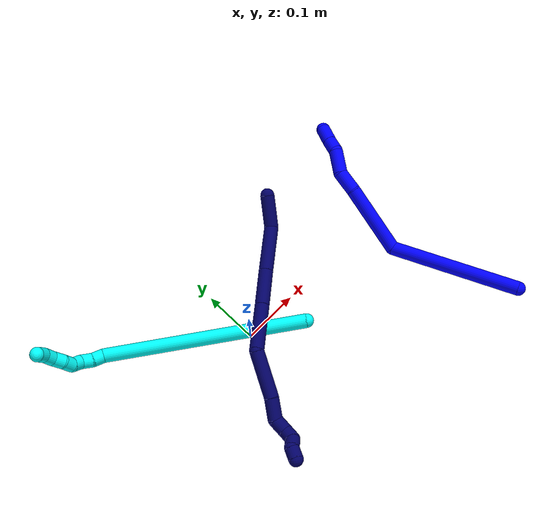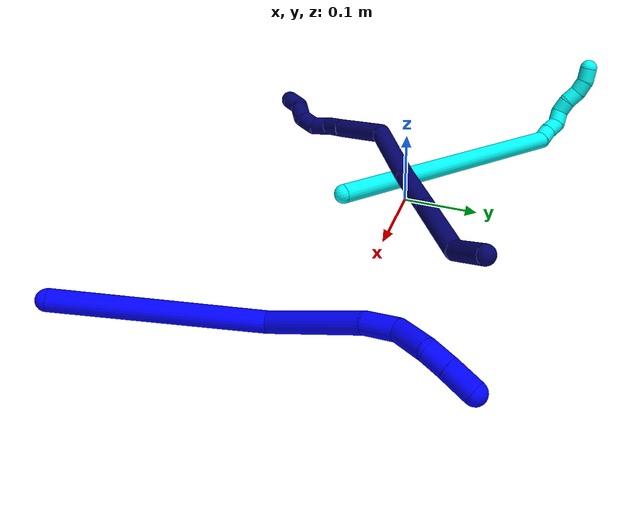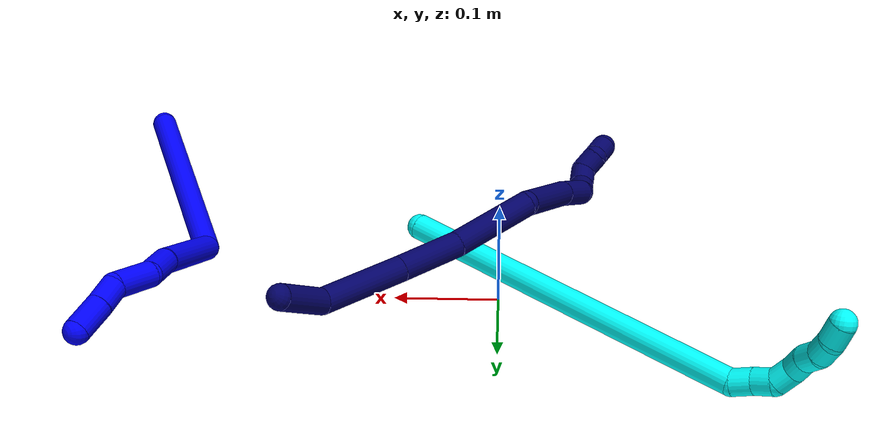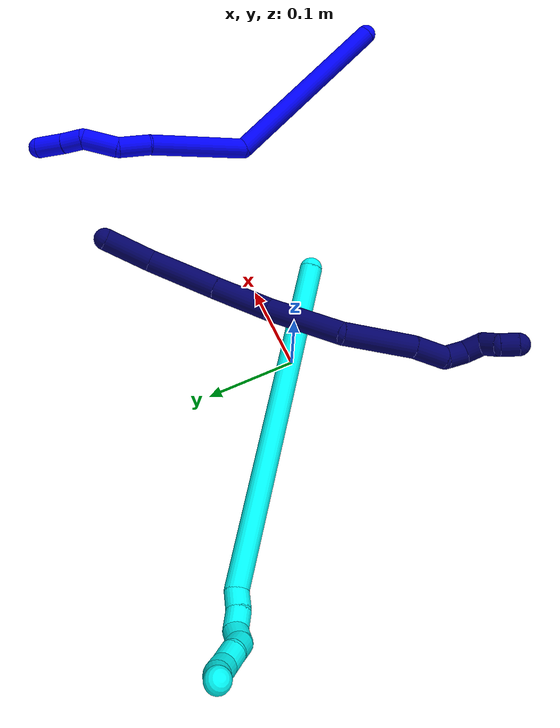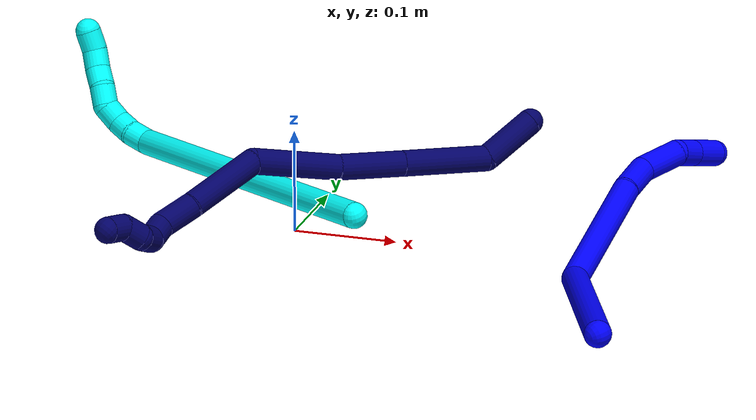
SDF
<sdf version="1.7">
 <world name="default">
  <model name="photoneo_s_sensor">
   <static>1</static>
   <pose>0 0 2 1.57079 1.57079 3.14159</pose>
   <link name="link">
    <inertial><mass>0.1</mass></inertial>
    <sensor name="sensor" type="depth">
     <update_rate>30</update_rate>
     <camera>
      <horizontal_fov>1.22</horizontal_fov>
      <image><width>1920</width><height>1200</height><format>B8G8R8</format></image>
      <clip><near>0.1</near><far>4</far></clip>
      <depth_camera><output>points</output></depth_camera>
     </camera>
     <plugin name="camera_plugin" filename="libgazebo_ros_depth_camera.so">
      <baseline>0.2</baseline>
      <alwaysOn>1</alwaysOn>
      <updateRate>0.0</updateRate>
      <cameraName>camera_ir</cameraName>
      <imageTopicName>/camera/color/image_raw</imageTopicName>
      <cameraInfoTopicName>/camera/color/camera_info</cameraInfoTopicName>
      <depthImageTopicName>/camera/depth/image_raw</depthImageTopicName>
      <depthImageCameraInfoTopicName>/camera/depth/camera_info</depthImageCameraInfoTopicName>
      <pointCloudTopicName>/camera/depth/points</pointCloudTopicName>
      <frameName>fr_optical</frameName>
      <pointCloudCutoff>0.1</pointCloudCutoff>
      <pointCloudCutoffMax>2.0</pointCloudCutoffMax>
      <distortionK1>0</distortionK1>
      <distortionK2>0</distortionK2>
      <distortionK3>0</distortionK3>
      <distortionT1>0</distortionT1>
      <distortionT2>0</distortionT2>
      <CxPrime>0</CxPrime>
      <Cx>0</Cx>
      <Cy>0</Cy>
      <focalLength>0</focalLength>
      <hackBaseline>0</hackBaseline>
     </plugin>
    </sensor>
   </link>
  </model>
  <model name="bin">
   <static>1</static>
   <link name="bottom">
    <collision name="collision-bottom">
     <pose>0 0 -0.01 0 -0 0</pose>
     <geometry><box><size>0.8 0.6 0.02</size></box></geometry>
     <surface>
      <friction><ode><mu>100</mu><mu2>100</mu2></ode></friction>
      <contact><collide_bitmask>65535</collide_bitmask></contact>
     </surface>
    </collision>
   </link>
   <link name="west_wall">
    <collision name="collision-west_wall">
     <pose>-0.41 0 0.1 0 -0 0</pose>
     <geometry><box><size>0.02 0.6 0.2</size></box></geometry>
     <surface>
      <friction><ode><mu>100</mu><mu2>100</mu2></ode></friction>
      <contact><collide_bitmask>65535</collide_bitmask></contact>
     </surface>
    </collision>
   </link>
   <link name="east_wall">
    <collision name="collision-east_wall">
     <pose>0.41 0 0.1 0 -0 0</pose>
     <geometry><box><size>0.02 0.6 0.2</size></box></geometry>
     <surface>
      <friction><ode><mu>100</mu><mu2>100</mu2></ode></friction>
      <contact><collide_bitmask>65535</collide_bitmask></contact>
     </surface>
    </collision>
   </link>
   <link name="south_wall">
    <collision name="collision-south_wall">
     <pose>0 -0.31 0.1 0 -0 0</pose>
     <geometry><box><size>0.8 0.02 0.2</size></box></geometry>
     <surface>
      <friction><ode><mu>100</mu><mu2>100</mu2></ode></friction>
      <contact><collide_bitmask>65535</collide_bitmask></contact>
     </surface>
    </collision>
   </link>
   <link name="north_wall">
    <collision name="collision-north_wall">
     <pose>0 0.31 0.1 0 -0 0</pose>
     <geometry><box><size>0.8 0.02 0.2</size></box></geometry>
     <surface>
      <friction><ode><mu>100</mu><mu2>100</mu2></ode></friction>
      <contact><collide_bitmask>65535</collide_bitmask></contact>
     </surface>
    </collision>
   </link>
  </model>
  <model name="1">
   <static>0</static>
   <link name="1">
    <collision name="collision-cylinder-e_1_1_4">
     <pose>-0.046519 0.093395 -0.051668 -2.07611 -0.411018 0.679661</pose>
     <geometry><cylinder><radius>0.0125</radius><length>0.232863</length></cylinder></geometry>
     <surface>
      <friction><ode><mu>1.16</mu><mu2>1.16</mu2><slip1>0</slip1><slip2>0</slip2></ode></friction>
      <contact><ode><kp>1e+06</kp><kd>1</kd><max_vel>0</max_vel><min_depth>0.001</min_depth></ode></contact>
     </surface>
    </collision>
    <visual name="visual-cylinder-e_1_1_4">
     <pose>-0.046519 0.093395 -0.051668 -2.07611 -0.411018 0.679661</pose>
     <geometry><cylinder><radius>0.0125</radius><length>0.232863</length></cylinder></geometry>
     <material><ambient>0 0 1 1</ambient></material>
    </visual>
    <collision name="collision-cylinder-e_2_4_5">
     <pose>-0.084349 0.219952 -0.156638 -2.58503 0.137555 -0.4732</pose>
     <geometry><cylinder><radius>0.0125</radius><length>0.126747</length></cylinder></geometry>
     <surface>
      <friction><ode><mu>1.16</mu><mu2>1.16</mu2><slip1>0</slip1><slip2>0</slip2></ode></friction>
      <contact><ode><kp>1e+06</kp><kd>1</kd><max_vel>0</max_vel><min_depth>0.001</min_depth></ode></contact>
     </surface>
    </collision>
    <visual name="visual-cylinder-e_2_4_5">
     <pose>-0.084349 0.219952 -0.156638 -2.58503 0.137555 -0.4732</pose>
     <geometry><cylinder><radius>0.0125</radius><length>0.126747</length></cylinder></geometry>
     <material><ambient>0 0 1 1</ambient></material>
    </visual>
    <collision name="collision-cylinder-e_3_5_6">
     <pose>-0.07699 0.26283 -0.22654 -2.61209 -0.069095 0.253588</pose>
     <geometry><cylinder><radius>0.0125</radius><length>0.038564</length></cylinder></geometry>
     <surface>
      <friction><ode><mu>1.16</mu><mu2>1.16</mu2><slip1>0</slip1><slip2>0</slip2></ode></friction>
      <contact><ode><kp>1e+06</kp><kd>1</kd><max_vel>0</max_vel><min_depth>0.001</min_depth></ode></contact>
     </surface>
    </collision>
    <visual name="visual-cylinder-e_3_5_6">
     <pose>-0.07699 0.26283 -0.22654 -2.61209 -0.069095 0.253588</pose>
     <geometry><cylinder><radius>0.0125</radius><length>0.038564</length></cylinder></geometry>
     <material><ambient>0 0 1 1</ambient></material>
    </visual>
    <collision name="collision-cylinder-e_4_6_7">
     <pose>-0.079099 0.274377 -0.264432 -3.05585 -0.036382 0.80221</pose>
     <geometry><cylinder><radius>0.0125</radius><length>0.042765</length></cylinder></geometry>
     <surface>
      <friction><ode><mu>1.16</mu><mu2>1.16</mu2><slip1>0</slip1><slip2>0</slip2></ode></friction>
      <contact><ode><kp>1e+06</kp><kd>1</kd><max_vel>0</max_vel><min_depth>0.001</min_depth></ode></contact>
     </surface>
    </collision>
    <visual name="visual-cylinder-e_4_6_7">
     <pose>-0.079099 0.274377 -0.264432 -3.05585 -0.036382 0.80221</pose>
     <geometry><cylinder><radius>0.0125</radius><length>0.042765</length></cylinder></geometry>
     <material><ambient>0 0 1 1</ambient></material>
    </visual>
    <collision name="collision-cylinder-e_5_7_8">
     <pose>-0.086131 0.278978 -0.296433 -2.88842 -0.514495 2.24046</pose>
     <geometry><cylinder><radius>0.0125</radius><length>0.025418</length></cylinder></geometry>
     <surface>
      <friction><ode><mu>1.16</mu><mu2>1.16</mu2><slip1>0</slip1><slip2>0</slip2></ode></friction>
      <contact><ode><kp>1e+06</kp><kd>1</kd><max_vel>0</max_vel><min_depth>0.001</min_depth></ode></contact>
     </surface>
    </collision>
    <visual name="visual-cylinder-e_5_7_8">
     <pose>-0.086131 0.278978 -0.296433 -2.88842 -0.514495 2.24046</pose>
     <geometry><cylinder><radius>0.0125</radius><length>0.025418</length></cylinder></geometry>
     <material><ambient>0 0 1 1</ambient></material>
    </visual>
    <collision name="collision-cylinder-e_6_8_2">
     <pose>-0.100327 0.284488 -0.321717 -2.95582 -0.491687 2.43064</pose>
     <geometry><cylinder><radius>0.0125</radius><length>0.033643</length></cylinder></geometry>
     <surface>
      <friction><ode><mu>1.16</mu><mu2>1.16</mu2><slip1>0</slip1><slip2>0</slip2></ode></friction>
      <contact><ode><kp>1e+06</kp><kd>1</kd><max_vel>0</max_vel><min_depth>0.001</min_depth></ode></contact>
     </surface>
    </collision>
    <visual name="visual-cylinder-e_6_8_2">
     <pose>-0.100327 0.284488 -0.321717 -2.95582 -0.491687 2.43064</pose>
     <geometry><cylinder><radius>0.0125</radius><length>0.033643</length></cylinder></geometry>
     <material><ambient>0 0 1 1</ambient></material>
    </visual>
    <collision name="collision-sphere-2">
     <pose>-0.108268 0.287227 -0.336291 0 -0 0</pose>
     <geometry><sphere><radius>0.0125</radius></sphere></geometry>
     <surface>
      <friction><ode><mu>1.16</mu><mu2>1.16</mu2><slip1>0</slip1><slip2>0</slip2></ode></friction>
      <contact><ode><kp>1e+06</kp><kd>1</kd><max_vel>0</max_vel><min_depth>0.001</min_depth></ode></contact>
     </surface>
    </collision>
    <visual name="visual-sphere-2">
     <pose>-0.108268 0.287227 -0.336291 0 -0 0</pose>
     <geometry><sphere><radius>0.0125</radius></sphere></geometry>
     <material><ambient>0 0 1 1</ambient></material>
    </visual>
    <collision name="collision-sphere-4">
     <pose>-0.093039 0.186789 -0.103337 0 -0 0</pose>
     <geometry><sphere><radius>0.0125</radius></sphere></geometry>
     <surface>
      <friction><ode><mu>1.16</mu><mu2>1.16</mu2><slip1>0</slip1><slip2>0</slip2></ode></friction>
      <contact><ode><kp>1e+06</kp><kd>1</kd><max_vel>0</max_vel><min_depth>0.001</min_depth></ode></contact>
     </surface>
    </collision>
    <visual name="visual-sphere-4">
     <pose>-0.093039 0.186789 -0.103337 0 -0 0</pose>
     <geometry><sphere><radius>0.0125</radius></sphere></geometry>
     <material><ambient>0 0 1 1</ambient></material>
    </visual>
    <collision name="collision-sphere-1">
     <geometry><sphere><radius>0.0125</radius></sphere></geometry>
     <surface>
      <friction><ode><mu>1.16</mu><mu2>1.16</mu2><slip1>0</slip1><slip2>0</slip2></ode></friction>
      <contact><ode><kp>1e+06</kp><kd>1</kd><max_vel>0</max_vel><min_depth>0.001</min_depth></ode></contact>
     </surface>
    </collision>
    <visual name="visual-sphere-1">
     <geometry><sphere><radius>0.0125</radius></sphere></geometry>
     <material><ambient>0 0 1 1</ambient></material>
    </visual>
    <collision name="collision-sphere-8">
     <pose>-0.092385 0.281749 -0.307144 0 -0 0</pose>
     <geometry><sphere><radius>0.0125</radius></sphere></geometry>
     <surface>
      <friction><ode><mu>1.16</mu><mu2>1.16</mu2><slip1>0</slip1><slip2>0</slip2></ode></friction>
      <contact><ode><kp>1e+06</kp><kd>1</kd><max_vel>0</max_vel><min_depth>0.001</min_depth></ode></contact>
     </surface>
    </collision>
    <visual name="visual-sphere-8">
     <pose>-0.092385 0.281749 -0.307144 0 -0 0</pose>
     <geometry><sphere><radius>0.0125</radius></sphere></geometry>
     <material><ambient>0 0 1 1</ambient></material>
    </visual>
    <collision name="collision-sphere-5">
     <pose>-0.075659 0.253114 -0.209938 0 -0 0</pose>
     <geometry><sphere><radius>0.0125</radius></sphere></geometry>
     <surface>
      <friction><ode><mu>1.16</mu><mu2>1.16</mu2><slip1>0</slip1><slip2>0</slip2></ode></friction>
      <contact><ode><kp>1e+06</kp><kd>1</kd><max_vel>0</max_vel><min_depth>0.001</min_depth></ode></contact>
     </surface>
    </collision>
    <visual name="visual-sphere-5">
     <pose>-0.075659 0.253114 -0.209938 0 -0 0</pose>
     <geometry><sphere><radius>0.0125</radius></sphere></geometry>
     <material><ambient>0 0 1 1</ambient></material>
    </visual>
    <collision name="collision-sphere-6">
     <pose>-0.078321 0.272547 -0.243142 0 -0 0</pose>
     <geometry><sphere><radius>0.0125</radius></sphere></geometry>
     <surface>
      <friction><ode><mu>1.16</mu><mu2>1.16</mu2><slip1>0</slip1><slip2>0</slip2></ode></friction>
      <contact><ode><kp>1e+06</kp><kd>1</kd><max_vel>0</max_vel><min_depth>0.001</min_depth></ode></contact>
     </surface>
    </collision>
    <visual name="visual-sphere-6">
     <pose>-0.078321 0.272547 -0.243142 0 -0 0</pose>
     <geometry><sphere><radius>0.0125</radius></sphere></geometry>
     <material><ambient>0 0 1 1</ambient></material>
    </visual>
    <collision name="collision-sphere-7">
     <pose>-0.079877 0.276206 -0.285722 0 -0 0</pose>
     <geometry><sphere><radius>0.0125</radius></sphere></geometry>
     <surface>
      <friction><ode><mu>1.16</mu><mu2>1.16</mu2><slip1>0</slip1><slip2>0</slip2></ode></friction>
      <contact><ode><kp>1e+06</kp><kd>1</kd><max_vel>0</max_vel><min_depth>0.001</min_depth></ode></contact>
     </surface>
    </collision>
    <visual name="visual-sphere-7">
     <pose>-0.079877 0.276206 -0.285722 0 -0 0</pose>
     <geometry><sphere><radius>0.0125</radius></sphere></geometry>
     <material><ambient>0 0 1 1</ambient></material>
    </visual>
    <inertial>
     <pose>-0.06688 0.176316 -0.140576 0 -0 0</pose>
     <mass>0.5</mass>
     <inertia>
      <ixx>0.001454</ixx>
      <ixy>0</ixy>
      <ixz>0</ixz>
      <iyy>0.000269</iyy>
      <iyz>0</iyz>
      <izz>-0.00057</izz>
     </inertia>
    </inertial>
   </link>
   <pose>0.374116 -0.286221 0.052698 2.40657 -1.31712 -1.52179</pose>
  </model>
  <model name="3">
   <static>0</static>
   <link name="3">
    <collision name="collision-cylinder-e_1_1_4">
     <pose>-0.079106 0.15634 -0.037982 -1.80913 -0.456973 0.575214</pose>
     <geometry><cylinder><radius>0.0125</radius><length>0.358568</length></cylinder></geometry>
     <surface>
      <friction><ode><mu>1.16</mu><mu2>1.16</mu2><slip1>0</slip1><slip2>0</slip2></ode></friction>
      <contact><ode><kp>1e+06</kp><kd>1</kd><max_vel>0</max_vel><min_depth>0.001</min_depth></ode></contact>
     </surface>
    </collision>
    <visual name="visual-cylinder-e_1_1_4">
     <pose>-0.079106 0.15634 -0.037982 -1.80913 -0.456973 0.575214</pose>
     <geometry><cylinder><radius>0.0125</radius><length>0.358568</length></cylinder></geometry>
     <material><ambient>0.003922 1 0.996078 1</ambient></material>
    </visual>
    <collision name="collision-cylinder-e_2_4_5">
     <pose>-0.164498 0.320531 -0.073386 -1.25349 -0.650317 0.478883</pose>
     <geometry><cylinder><radius>0.0125</radius><length>0.020764</length></cylinder></geometry>
     <surface>
      <friction><ode><mu>1.16</mu><mu2>1.16</mu2><slip1>0</slip1><slip2>0</slip2></ode></friction>
      <contact><ode><kp>1e+06</kp><kd>1</kd><max_vel>0</max_vel><min_depth>0.001</min_depth></ode></contact>
     </surface>
    </collision>
    <visual name="visual-cylinder-e_2_4_5">
     <pose>-0.164498 0.320531 -0.073386 -1.25349 -0.650317 0.478883</pose>
     <geometry><cylinder><radius>0.0125</radius><length>0.020764</length></cylinder></geometry>
     <material><ambient>0.003922 1 0.996078 1</ambient></material>
    </visual>
    <collision name="collision-cylinder-e_3_5_6">
     <pose>-0.175026 0.337532 -0.068822 -1.35708 -0.425392 0.344783</pose>
     <geometry><cylinder><radius>0.0125</radius><length>0.020558</length></cylinder></geometry>
     <surface>
      <friction><ode><mu>1.16</mu><mu2>1.16</mu2><slip1>0</slip1><slip2>0</slip2></ode></friction>
      <contact><ode><kp>1e+06</kp><kd>1</kd><max_vel>0</max_vel><min_depth>0.001</min_depth></ode></contact>
     </surface>
    </collision>
    <visual name="visual-cylinder-e_3_5_6">
     <pose>-0.175026 0.337532 -0.068822 -1.35708 -0.425392 0.344783</pose>
     <geometry><cylinder><radius>0.0125</radius><length>0.020558</length></cylinder></geometry>
     <material><ambient>0.003922 1 0.996078 1</ambient></material>
    </visual>
    <collision name="collision-cylinder-e_4_6_7">
     <pose>-0.183411 0.352341 -0.059699 -0.670367 -0.426886 0.15071</pose>
     <geometry><cylinder><radius>0.0125</radius><length>0.020012</length></cylinder></geometry>
     <surface>
      <friction><ode><mu>1.16</mu><mu2>1.16</mu2><slip1>0</slip1><slip2>0</slip2></ode></friction>
      <contact><ode><kp>1e+06</kp><kd>1</kd><max_vel>0</max_vel><min_depth>0.001</min_depth></ode></contact>
     </surface>
    </collision>
    <visual name="visual-cylinder-e_4_6_7">
     <pose>-0.183411 0.352341 -0.059699 -0.670367 -0.426886 0.15071</pose>
     <geometry><cylinder><radius>0.0125</radius><length>0.020012</length></cylinder></geometry>
     <material><ambient>0.003922 1 0.996078 1</ambient></material>
    </visual>
    <collision name="collision-cylinder-e_5_7_8">
     <pose>-0.186577 0.365363 -0.045845 -0.831319 0.097689 -0.043145</pose>
     <geometry><cylinder><radius>0.0125</radius><length>0.02003</length></cylinder></geometry>
     <surface>
      <friction><ode><mu>1.16</mu><mu2>1.16</mu2><slip1>0</slip1><slip2>0</slip2></ode></friction>
      <contact><ode><kp>1e+06</kp><kd>1</kd><max_vel>0</max_vel><min_depth>0.001</min_depth></ode></contact>
     </surface>
    </collision>
    <visual name="visual-cylinder-e_5_7_8">
     <pose>-0.186577 0.365363 -0.045845 -0.831319 0.097689 -0.043145</pose>
     <geometry><cylinder><radius>0.0125</radius><length>0.02003</length></cylinder></geometry>
     <material><ambient>0.003922 1 0.996078 1</ambient></material>
    </visual>
    <collision name="collision-cylinder-e_6_8_9">
     <pose>-0.185252 0.381723 -0.034734 -1.11641 0.03476 -0.021707</pose>
     <geometry><cylinder><radius>0.0125</radius><length>0.020034</length></cylinder></geometry>
     <surface>
      <friction><ode><mu>1.16</mu><mu2>1.16</mu2><slip1>0</slip1><slip2>0</slip2></ode></friction>
      <contact><ode><kp>1e+06</kp><kd>1</kd><max_vel>0</max_vel><min_depth>0.001</min_depth></ode></contact>
     </surface>
    </collision>
    <visual name="visual-cylinder-e_6_8_9">
     <pose>-0.185252 0.381723 -0.034734 -1.11641 0.03476 -0.021707</pose>
     <geometry><cylinder><radius>0.0125</radius><length>0.020034</length></cylinder></geometry>
     <material><ambient>0.003922 1 0.996078 1</ambient></material>
    </visual>
    <collision name="collision-cylinder-e_7_9_10">
     <pose>-0.183794 0.397724 -0.023273 -0.781026 0.111023 -0.045742</pose>
     <geometry><cylinder><radius>0.0125</radius><length>0.020027</length></cylinder></geometry>
     <surface>
      <friction><ode><mu>1.16</mu><mu2>1.16</mu2><slip1>0</slip1><slip2>0</slip2></ode></friction>
      <contact><ode><kp>1e+06</kp><kd>1</kd><max_vel>0</max_vel><min_depth>0.001</min_depth></ode></contact>
     </surface>
    </collision>
    <visual name="visual-cylinder-e_7_9_10">
     <pose>-0.183794 0.397724 -0.023273 -0.781026 0.111023 -0.045742</pose>
     <geometry><cylinder><radius>0.0125</radius><length>0.020027</length></cylinder></geometry>
     <material><ambient>0.003922 1 0.996078 1</ambient></material>
    </visual>
    <collision name="collision-cylinder-e_8_10_2">
     <pose>-0.183213 0.409238 -0.007291 -0.468187 -0.052822 0.012599</pose>
     <geometry><cylinder><radius>0.0125</radius><length>0.020006</length></cylinder></geometry>
     <surface>
      <friction><ode><mu>1.16</mu><mu2>1.16</mu2><slip1>0</slip1><slip2>0</slip2></ode></friction>
      <contact><ode><kp>1e+06</kp><kd>1</kd><max_vel>0</max_vel><min_depth>0.001</min_depth></ode></contact>
     </surface>
    </collision>
    <visual name="visual-cylinder-e_8_10_2">
     <pose>-0.183213 0.409238 -0.007291 -0.468187 -0.052822 0.012599</pose>
     <geometry><cylinder><radius>0.0125</radius><length>0.020006</length></cylinder></geometry>
     <material><ambient>0.003922 1 0.996078 1</ambient></material>
    </visual>
    <collision name="collision-sphere-2">
     <pose>-0.183741 0.413746 0.001623 0 -0 0</pose>
     <geometry><sphere><radius>0.0125</radius></sphere></geometry>
     <surface>
      <friction><ode><mu>1.16</mu><mu2>1.16</mu2><slip1>0</slip1><slip2>0</slip2></ode></friction>
      <contact><ode><kp>1e+06</kp><kd>1</kd><max_vel>0</max_vel><min_depth>0.001</min_depth></ode></contact>
     </surface>
    </collision>
    <visual name="visual-sphere-2">
     <pose>-0.183741 0.413746 0.001623 0 -0 0</pose>
     <geometry><sphere><radius>0.0125</radius></sphere></geometry>
     <material><ambient>0.003922 1 0.996078 1</ambient></material>
    </visual>
    <collision name="collision-sphere-10">
     <pose>-0.182685 0.40473 -0.016205 0 -0 0</pose>
     <geometry><sphere><radius>0.0125</radius></sphere></geometry>
     <surface>
      <friction><ode><mu>1.16</mu><mu2>1.16</mu2><slip1>0</slip1><slip2>0</slip2></ode></friction>
      <contact><ode><kp>1e+06</kp><kd>1</kd><max_vel>0</max_vel><min_depth>0.001</min_depth></ode></contact>
     </surface>
    </collision>
    <visual name="visual-sphere-10">
     <pose>-0.182685 0.40473 -0.016205 0 -0 0</pose>
     <geometry><sphere><radius>0.0125</radius></sphere></geometry>
     <material><ambient>0.003922 1 0.996078 1</ambient></material>
    </visual>
    <collision name="collision-sphere-9">
     <pose>-0.184904 0.390718 -0.03034 0 -0 0</pose>
     <geometry><sphere><radius>0.0125</radius></sphere></geometry>
     <surface>
      <friction><ode><mu>1.16</mu><mu2>1.16</mu2><slip1>0</slip1><slip2>0</slip2></ode></friction>
      <contact><ode><kp>1e+06</kp><kd>1</kd><max_vel>0</max_vel><min_depth>0.001</min_depth></ode></contact>
     </surface>
    </collision>
    <visual name="visual-sphere-9">
     <pose>-0.184904 0.390718 -0.03034 0 -0 0</pose>
     <geometry><sphere><radius>0.0125</radius></sphere></geometry>
     <material><ambient>0.003922 1 0.996078 1</ambient></material>
    </visual>
    <collision name="collision-sphere-4">
     <pose>-0.158212 0.312681 -0.075964 0 -0 0</pose>
     <geometry><sphere><radius>0.0125</radius></sphere></geometry>
     <surface>
      <friction><ode><mu>1.16</mu><mu2>1.16</mu2><slip1>0</slip1><slip2>0</slip2></ode></friction>
      <contact><ode><kp>1e+06</kp><kd>1</kd><max_vel>0</max_vel><min_depth>0.001</min_depth></ode></contact>
     </surface>
    </collision>
    <visual name="visual-sphere-4">
     <pose>-0.158212 0.312681 -0.075964 0 -0 0</pose>
     <geometry><sphere><radius>0.0125</radius></sphere></geometry>
     <material><ambient>0.003922 1 0.996078 1</ambient></material>
    </visual>
    <collision name="collision-sphere-1">
     <geometry><sphere><radius>0.0125</radius></sphere></geometry>
     <surface>
      <friction><ode><mu>1.16</mu><mu2>1.16</mu2><slip1>0</slip1><slip2>0</slip2></ode></friction>
      <contact><ode><kp>1e+06</kp><kd>1</kd><max_vel>0</max_vel><min_depth>0.001</min_depth></ode></contact>
     </surface>
    </collision>
    <visual name="visual-sphere-1">
     <geometry><sphere><radius>0.0125</radius></sphere></geometry>
     <material><ambient>0.003922 1 0.996078 1</ambient></material>
    </visual>
    <collision name="collision-sphere-8">
     <pose>-0.1856 0.372727 -0.039128 0 -0 0</pose>
     <geometry><sphere><radius>0.0125</radius></sphere></geometry>
     <surface>
      <friction><ode><mu>1.16</mu><mu2>1.16</mu2><slip1>0</slip1><slip2>0</slip2></ode></friction>
      <contact><ode><kp>1e+06</kp><kd>1</kd><max_vel>0</max_vel><min_depth>0.001</min_depth></ode></contact>
     </surface>
    </collision>
    <visual name="visual-sphere-8">
     <pose>-0.1856 0.372727 -0.039128 0 -0 0</pose>
     <geometry><sphere><radius>0.0125</radius></sphere></geometry>
     <material><ambient>0.003922 1 0.996078 1</ambient></material>
    </visual>
    <collision name="collision-sphere-5">
     <pose>-0.170784 0.328382 -0.070808 0 -0 0</pose>
     <geometry><sphere><radius>0.0125</radius></sphere></geometry>
     <surface>
      <friction><ode><mu>1.16</mu><mu2>1.16</mu2><slip1>0</slip1><slip2>0</slip2></ode></friction>
      <contact><ode><kp>1e+06</kp><kd>1</kd><max_vel>0</max_vel><min_depth>0.001</min_depth></ode></contact>
     </surface>
    </collision>
    <visual name="visual-sphere-5">
     <pose>-0.170784 0.328382 -0.070808 0 -0 0</pose>
     <geometry><sphere><radius>0.0125</radius></sphere></geometry>
     <material><ambient>0.003922 1 0.996078 1</ambient></material>
    </visual>
    <collision name="collision-sphere-6">
     <pose>-0.179268 0.346682 -0.066836 0 -0 0</pose>
     <geometry><sphere><radius>0.0125</radius></sphere></geometry>
     <surface>
      <friction><ode><mu>1.16</mu><mu2>1.16</mu2><slip1>0</slip1><slip2>0</slip2></ode></friction>
      <contact><ode><kp>1e+06</kp><kd>1</kd><max_vel>0</max_vel><min_depth>0.001</min_depth></ode></contact>
     </surface>
    </collision>
    <visual name="visual-sphere-6">
     <pose>-0.179268 0.346682 -0.066836 0 -0 0</pose>
     <geometry><sphere><radius>0.0125</radius></sphere></geometry>
     <material><ambient>0.003922 1 0.996078 1</ambient></material>
    </visual>
    <collision name="collision-sphere-7">
     <pose>-0.187554 0.357999 -0.052562 0 -0 0</pose>
     <geometry><sphere><radius>0.0125</radius></sphere></geometry>
     <surface>
      <friction><ode><mu>1.16</mu><mu2>1.16</mu2><slip1>0</slip1><slip2>0</slip2></ode></friction>
      <contact><ode><kp>1e+06</kp><kd>1</kd><max_vel>0</max_vel><min_depth>0.001</min_depth></ode></contact>
     </surface>
    </collision>
    <visual name="visual-sphere-7">
     <pose>-0.187554 0.357999 -0.052562 0 -0 0</pose>
     <geometry><sphere><radius>0.0125</radius></sphere></geometry>
     <material><ambient>0.003922 1 0.996078 1</ambient></material>
    </visual>
    <inertial>
     <pose>-0.107688 0.215645 -0.039957 0 -0 0</pose>
     <mass>0.5</mass>
     <inertia>
      <ixx>0.004782</ixx>
      <ixy>0</ixy>
      <ixz>0</ixz>
      <iyy>0.002058</iyy>
      <iyz>0</iyz>
      <izz>-0.001666</izz>
     </inertia>
    </inertial>
   </link>
   <pose>0.078177 -0.060158 0.046689 0.242723 -0.233283 0.468543</pose>
  </model>
  <model name="7">
   <static>0</static>
   <link name="7">
    <collision name="collision-cylinder-e_1_1_4">
     <pose>-0.004685 -0.002709 -0.028083 3.04542 -0.164556 -2.08507</pose>
     <geometry><cylinder><radius>0.0125</radius><length>0.0572</length></cylinder></geometry>
     <surface>
      <friction><ode><mu>1.16</mu><mu2>1.16</mu2><slip1>0</slip1><slip2>0</slip2></ode></friction>
      <contact><ode><kp>1e+06</kp><kd>1</kd><max_vel>0</max_vel><min_depth>0.001</min_depth></ode></contact>
     </surface>
    </collision>
    <visual name="visual-cylinder-e_1_1_4">
     <pose>-0.004685 -0.002709 -0.028083 3.04542 -0.164556 -2.08507</pose>
     <geometry><cylinder><radius>0.0125</radius><length>0.0572</length></cylinder></geometry>
     <material><ambient>0.003922 0 0.403922 1</ambient></material>
    </visual>
    <collision name="collision-cylinder-e_2_4_5">
     <pose>-0.038341 -0.014218 -0.086523 2.85947 -0.741918 -2.4415</pose>
     <geometry><cylinder><radius>0.0125</radius><length>0.085751</length></cylinder></geometry>
     <surface>
      <friction><ode><mu>1.16</mu><mu2>1.16</mu2><slip1>0</slip1><slip2>0</slip2></ode></friction>
      <contact><ode><kp>1e+06</kp><kd>1</kd><max_vel>0</max_vel><min_depth>0.001</min_depth></ode></contact>
     </surface>
    </collision>
    <visual name="visual-cylinder-e_2_4_5">
     <pose>-0.038341 -0.014218 -0.086523 2.85947 -0.741918 -2.4415</pose>
     <geometry><cylinder><radius>0.0125</radius><length>0.085751</length></cylinder></geometry>
     <material><ambient>0.003922 0 0.403922 1</ambient></material>
    </visual>
    <collision name="collision-cylinder-e_3_5_6">
     <pose>-0.089319 -0.03024 -0.13984 2.83679 -0.740666 -2.38817</pose>
     <geometry><cylinder><radius>0.0125</radius><length>0.065225</length></cylinder></geometry>
     <surface>
      <friction><ode><mu>1.16</mu><mu2>1.16</mu2><slip1>0</slip1><slip2>0</slip2></ode></friction>
      <contact><ode><kp>1e+06</kp><kd>1</kd><max_vel>0</max_vel><min_depth>0.001</min_depth></ode></contact>
     </surface>
    </collision>
    <visual name="visual-cylinder-e_3_5_6">
     <pose>-0.089319 -0.03024 -0.13984 2.83679 -0.740666 -2.38817</pose>
     <geometry><cylinder><radius>0.0125</radius><length>0.065225</length></cylinder></geometry>
     <material><ambient>0.003922 0 0.403922 1</ambient></material>
    </visual>
    <collision name="collision-cylinder-e_4_6_7">
     <pose>-0.143346 -0.049628 -0.189306 2.71133 -0.832039 -2.22298</pose>
     <geometry><cylinder><radius>0.0125</radius><length>0.086624</length></cylinder></geometry>
     <surface>
      <friction><ode><mu>1.16</mu><mu2>1.16</mu2><slip1>0</slip1><slip2>0</slip2></ode></friction>
      <contact><ode><kp>1e+06</kp><kd>1</kd><max_vel>0</max_vel><min_depth>0.001</min_depth></ode></contact>
     </surface>
    </collision>
    <visual name="visual-cylinder-e_4_6_7">
     <pose>-0.143346 -0.049628 -0.189306 2.71133 -0.832039 -2.22298</pose>
     <geometry><cylinder><radius>0.0125</radius><length>0.086624</length></cylinder></geometry>
     <material><ambient>0.003922 0 0.403922 1</ambient></material>
    </visual>
    <collision name="collision-cylinder-e_5_7_8">
     <pose>-0.183283 -0.07595 -0.253169 2.77935 -0.195621 -0.983769</pose>
     <geometry><cylinder><radius>0.0125</radius><length>0.081451</length></cylinder></geometry>
     <surface>
      <friction><ode><mu>1.16</mu><mu2>1.16</mu2><slip1>0</slip1><slip2>0</slip2></ode></friction>
      <contact><ode><kp>1e+06</kp><kd>1</kd><max_vel>0</max_vel><min_depth>0.001</min_depth></ode></contact>
     </surface>
    </collision>
    <visual name="visual-cylinder-e_5_7_8">
     <pose>-0.183283 -0.07595 -0.253169 2.77935 -0.195621 -0.983769</pose>
     <geometry><cylinder><radius>0.0125</radius><length>0.081451</length></cylinder></geometry>
     <material><ambient>0.003922 0 0.403922 1</ambient></material>
    </visual>
    <collision name="collision-cylinder-e_6_8_9">
     <pose>-0.195908 -0.094096 -0.30794 2.91643 -0.257709 -1.70669</pose>
     <geometry><cylinder><radius>0.0125</radius><length>0.036952</length></cylinder></geometry>
     <surface>
      <friction><ode><mu>1.16</mu><mu2>1.16</mu2><slip1>0</slip1><slip2>0</slip2></ode></friction>
      <contact><ode><kp>1e+06</kp><kd>1</kd><max_vel>0</max_vel><min_depth>0.001</min_depth></ode></contact>
     </surface>
    </collision>
    <visual name="visual-cylinder-e_6_8_9">
     <pose>-0.195908 -0.094096 -0.30794 2.91643 -0.257709 -1.70669</pose>
     <geometry><cylinder><radius>0.0125</radius><length>0.036952</length></cylinder></geometry>
     <material><ambient>0.003922 0 0.403922 1</ambient></material>
    </visual>
    <collision name="collision-cylinder-e_7_9_10">
     <pose>-0.199786 -0.106183 -0.334807 2.43318 0.06661 0.179704</pose>
     <geometry><cylinder><radius>0.0125</radius><length>0.024949</length></cylinder></geometry>
     <surface>
      <friction><ode><mu>1.16</mu><mu2>1.16</mu2><slip1>0</slip1><slip2>0</slip2></ode></friction>
      <contact><ode><kp>1e+06</kp><kd>1</kd><max_vel>0</max_vel><min_depth>0.001</min_depth></ode></contact>
     </surface>
    </collision>
    <visual name="visual-cylinder-e_7_9_10">
     <pose>-0.199786 -0.106183 -0.334807 2.43318 0.06661 0.179704</pose>
     <geometry><cylinder><radius>0.0125</radius><length>0.024949</length></cylinder></geometry>
     <material><ambient>0.003922 0 0.403922 1</ambient></material>
    </visual>
    <collision name="collision-cylinder-e_8_10_11">
     <pose>-0.202782 -0.123535 -0.348259 1.97877 -0.362723 -0.544225</pose>
     <geometry><cylinder><radius>0.0125</radius><length>0.021566</length></cylinder></geometry>
     <surface>
      <friction><ode><mu>1.16</mu><mu2>1.16</mu2><slip1>0</slip1><slip2>0</slip2></ode></friction>
      <contact><ode><kp>1e+06</kp><kd>1</kd><max_vel>0</max_vel><min_depth>0.001</min_depth></ode></contact>
     </surface>
    </collision>
    <visual name="visual-cylinder-e_8_10_11">
     <pose>-0.202782 -0.123535 -0.348259 1.97877 -0.362723 -0.544225</pose>
     <geometry><cylinder><radius>0.0125</radius><length>0.021566</length></cylinder></geometry>
     <material><ambient>0.003922 0 0.403922 1</ambient></material>
    </visual>
    <collision name="collision-cylinder-e_9_11_12">
     <pose>-0.215445 -0.137148 -0.354645 2.07174 -1.05858 -1.5579</pose>
     <geometry><cylinder><radius>0.0125</radius><length>0.020275</length></cylinder></geometry>
     <surface>
      <friction><ode><mu>1.16</mu><mu2>1.16</mu2><slip1>0</slip1><slip2>0</slip2></ode></friction>
      <contact><ode><kp>1e+06</kp><kd>1</kd><max_vel>0</max_vel><min_depth>0.001</min_depth></ode></contact>
     </surface>
    </collision>
    <visual name="visual-cylinder-e_9_11_12">
     <pose>-0.215445 -0.137148 -0.354645 2.07174 -1.05858 -1.5579</pose>
     <geometry><cylinder><radius>0.0125</radius><length>0.020275</length></cylinder></geometry>
     <material><ambient>0.003922 0 0.403922 1</ambient></material>
    </visual>
    <collision name="collision-cylinder-e_10_12_2">
     <pose>-0.228672 -0.147415 -0.363803 2.42409 -0.454402 -1.105</pose>
     <geometry><cylinder><radius>0.0125</radius><length>0.020007</length></cylinder></geometry>
     <surface>
      <friction><ode><mu>1.16</mu><mu2>1.16</mu2><slip1>0</slip1><slip2>0</slip2></ode></friction>
      <contact><ode><kp>1e+06</kp><kd>1</kd><max_vel>0</max_vel><min_depth>0.001</min_depth></ode></contact>
     </surface>
    </collision>
    <visual name="visual-cylinder-e_10_12_2">
     <pose>-0.228672 -0.147415 -0.363803 2.42409 -0.454402 -1.105</pose>
     <geometry><cylinder><radius>0.0125</radius><length>0.020007</length></cylinder></geometry>
     <material><ambient>0.003922 0 0.403922 1</ambient></material>
    </visual>
    <collision name="collision-sphere-2">
     <pose>-0.233062 -0.153325 -0.370576 0 -0 0</pose>
     <geometry><sphere><radius>0.0125</radius></sphere></geometry>
     <surface>
      <friction><ode><mu>1.16</mu><mu2>1.16</mu2><slip1>0</slip1><slip2>0</slip2></ode></friction>
      <contact><ode><kp>1e+06</kp><kd>1</kd><max_vel>0</max_vel><min_depth>0.001</min_depth></ode></contact>
     </surface>
    </collision>
    <visual name="visual-sphere-2">
     <pose>-0.233062 -0.153325 -0.370576 0 -0 0</pose>
     <geometry><sphere><radius>0.0125</radius></sphere></geometry>
     <material><ambient>0.003922 0 0.403922 1</ambient></material>
    </visual>
    <collision name="collision-sphere-12">
     <pose>-0.224281 -0.141506 -0.357031 0 -0 0</pose>
     <geometry><sphere><radius>0.0125</radius></sphere></geometry>
     <surface>
      <friction><ode><mu>1.16</mu><mu2>1.16</mu2><slip1>0</slip1><slip2>0</slip2></ode></friction>
      <contact><ode><kp>1e+06</kp><kd>1</kd><max_vel>0</max_vel><min_depth>0.001</min_depth></ode></contact>
     </surface>
    </collision>
    <visual name="visual-sphere-12">
     <pose>-0.224281 -0.141506 -0.357031 0 -0 0</pose>
     <geometry><sphere><radius>0.0125</radius></sphere></geometry>
     <material><ambient>0.003922 0 0.403922 1</ambient></material>
    </visual>
    <collision name="collision-sphere-11">
     <pose>-0.206608 -0.13279 -0.352259 0 -0 0</pose>
     <geometry><sphere><radius>0.0125</radius></sphere></geometry>
     <surface>
      <friction><ode><mu>1.16</mu><mu2>1.16</mu2><slip1>0</slip1><slip2>0</slip2></ode></friction>
      <contact><ode><kp>1e+06</kp><kd>1</kd><max_vel>0</max_vel><min_depth>0.001</min_depth></ode></contact>
     </surface>
    </collision>
    <visual name="visual-sphere-11">
     <pose>-0.206608 -0.13279 -0.352259 0 -0 0</pose>
     <geometry><sphere><radius>0.0125</radius></sphere></geometry>
     <material><ambient>0.003922 0 0.403922 1</ambient></material>
    </visual>
    <collision name="collision-sphere-10">
     <pose>-0.198956 -0.114281 -0.344259 0 -0 0</pose>
     <geometry><sphere><radius>0.0125</radius></sphere></geometry>
     <surface>
      <friction><ode><mu>1.16</mu><mu2>1.16</mu2><slip1>0</slip1><slip2>0</slip2></ode></friction>
      <contact><ode><kp>1e+06</kp><kd>1</kd><max_vel>0</max_vel><min_depth>0.001</min_depth></ode></contact>
     </surface>
    </collision>
    <visual name="visual-sphere-10">
     <pose>-0.198956 -0.114281 -0.344259 0 -0 0</pose>
     <geometry><sphere><radius>0.0125</radius></sphere></geometry>
     <material><ambient>0.003922 0 0.403922 1</ambient></material>
    </visual>
    <collision name="collision-sphere-9">
     <pose>-0.200617 -0.098085 -0.325355 0 -0 0</pose>
     <geometry><sphere><radius>0.0125</radius></sphere></geometry>
     <surface>
      <friction><ode><mu>1.16</mu><mu2>1.16</mu2><slip1>0</slip1><slip2>0</slip2></ode></friction>
      <contact><ode><kp>1e+06</kp><kd>1</kd><max_vel>0</max_vel><min_depth>0.001</min_depth></ode></contact>
     </surface>
    </collision>
    <visual name="visual-sphere-9">
     <pose>-0.200617 -0.098085 -0.325355 0 -0 0</pose>
     <geometry><sphere><radius>0.0125</radius></sphere></geometry>
     <material><ambient>0.003922 0 0.403922 1</ambient></material>
    </visual>
    <collision name="collision-sphere-4">
     <pose>-0.00937 -0.005419 -0.056166 0 -0 0</pose>
     <geometry><sphere><radius>0.0125</radius></sphere></geometry>
     <surface>
      <friction><ode><mu>1.16</mu><mu2>1.16</mu2><slip1>0</slip1><slip2>0</slip2></ode></friction>
      <contact><ode><kp>1e+06</kp><kd>1</kd><max_vel>0</max_vel><min_depth>0.001</min_depth></ode></contact>
     </surface>
    </collision>
    <visual name="visual-sphere-4">
     <pose>-0.00937 -0.005419 -0.056166 0 -0 0</pose>
     <geometry><sphere><radius>0.0125</radius></sphere></geometry>
     <material><ambient>0.003922 0 0.403922 1</ambient></material>
    </visual>
    <collision name="collision-sphere-1">
     <geometry><sphere><radius>0.0125</radius></sphere></geometry>
     <surface>
      <friction><ode><mu>1.16</mu><mu2>1.16</mu2><slip1>0</slip1><slip2>0</slip2></ode></friction>
      <contact><ode><kp>1e+06</kp><kd>1</kd><max_vel>0</max_vel><min_depth>0.001</min_depth></ode></contact>
     </surface>
    </collision>
    <visual name="visual-sphere-1">
     <geometry><sphere><radius>0.0125</radius></sphere></geometry>
     <material><ambient>0.003922 0 0.403922 1</ambient></material>
    </visual>
    <collision name="collision-sphere-8">
     <pose>-0.191199 -0.090107 -0.290525 0 -0 0</pose>
     <geometry><sphere><radius>0.0125</radius></sphere></geometry>
     <surface>
      <friction><ode><mu>1.16</mu><mu2>1.16</mu2><slip1>0</slip1><slip2>0</slip2></ode></friction>
      <contact><ode><kp>1e+06</kp><kd>1</kd><max_vel>0</max_vel><min_depth>0.001</min_depth></ode></contact>
     </surface>
    </collision>
    <visual name="visual-sphere-8">
     <pose>-0.191199 -0.090107 -0.290525 0 -0 0</pose>
     <geometry><sphere><radius>0.0125</radius></sphere></geometry>
     <material><ambient>0.003922 0 0.403922 1</ambient></material>
    </visual>
    <collision name="collision-sphere-5">
     <pose>-0.067312 -0.023017 -0.116881 0 -0 0</pose>
     <geometry><sphere><radius>0.0125</radius></sphere></geometry>
     <surface>
      <friction><ode><mu>1.16</mu><mu2>1.16</mu2><slip1>0</slip1><slip2>0</slip2></ode></friction>
      <contact><ode><kp>1e+06</kp><kd>1</kd><max_vel>0</max_vel><min_depth>0.001</min_depth></ode></contact>
     </surface>
    </collision>
    <visual name="visual-sphere-5">
     <pose>-0.067312 -0.023017 -0.116881 0 -0 0</pose>
     <geometry><sphere><radius>0.0125</radius></sphere></geometry>
     <material><ambient>0.003922 0 0.403922 1</ambient></material>
    </visual>
    <collision name="collision-sphere-6">
     <pose>-0.111325 -0.037463 -0.162799 0 -0 0</pose>
     <geometry><sphere><radius>0.0125</radius></sphere></geometry>
     <surface>
      <friction><ode><mu>1.16</mu><mu2>1.16</mu2><slip1>0</slip1><slip2>0</slip2></ode></friction>
      <contact><ode><kp>1e+06</kp><kd>1</kd><max_vel>0</max_vel><min_depth>0.001</min_depth></ode></contact>
     </surface>
    </collision>
    <visual name="visual-sphere-6">
     <pose>-0.111325 -0.037463 -0.162799 0 -0 0</pose>
     <geometry><sphere><radius>0.0125</radius></sphere></geometry>
     <material><ambient>0.003922 0 0.403922 1</ambient></material>
    </visual>
    <collision name="collision-sphere-7">
     <pose>-0.175367 -0.061793 -0.215813 0 -0 0</pose>
     <geometry><sphere><radius>0.0125</radius></sphere></geometry>
     <surface>
      <friction><ode><mu>1.16</mu><mu2>1.16</mu2><slip1>0</slip1><slip2>0</slip2></ode></friction>
      <contact><ode><kp>1e+06</kp><kd>1</kd><max_vel>0</max_vel><min_depth>0.001</min_depth></ode></contact>
     </surface>
    </collision>
    <visual name="visual-sphere-7">
     <pose>-0.175367 -0.061793 -0.215813 0 -0 0</pose>
     <geometry><sphere><radius>0.0125</radius></sphere></geometry>
     <material><ambient>0.003922 0 0.403922 1</ambient></material>
    </visual>
    <inertial>
     <pose>-0.124535 -0.056704 -0.193756 0 -0 0</pose>
     <mass>0.5</mass>
     <inertia>
      <ixx>-0.000199</ixx>
      <ixy>0</ixy>
      <ixz>0</ixz>
      <iyy>-4.3e-05</iyy>
      <iyz>0</iyz>
      <izz>0.000142</izz>
     </inertia>
    </inertial>
   </link>
   <pose>0.189682 0.142512 0.081011 -0.675328 0.645214 0.012372</pose>
  </model>
 </world>
</sdf>
